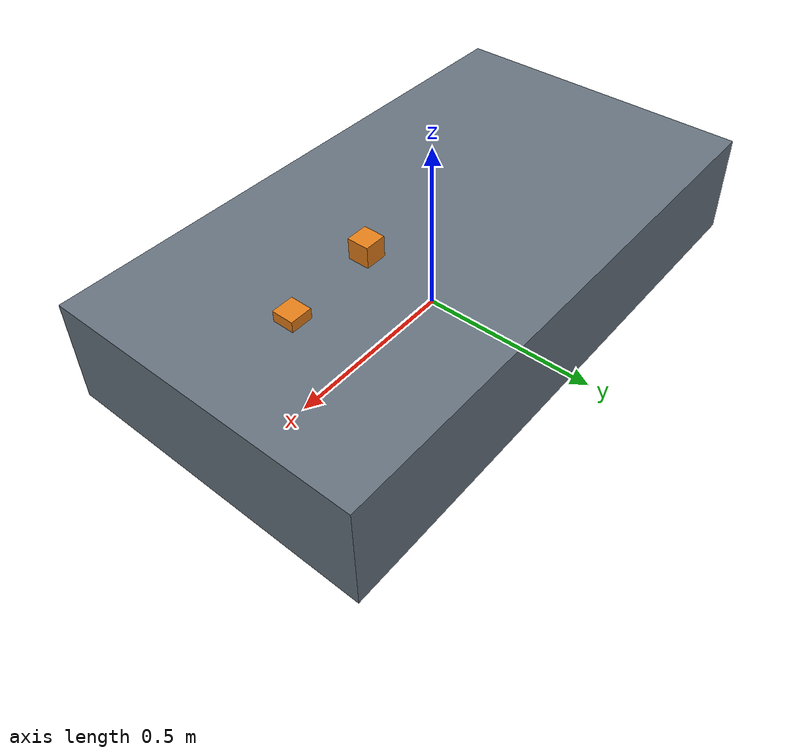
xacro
<?xml version="1.0"?>
<robot xmlns:xacro="http://www.ros.org/wiki/xacro" name="usv">

  <!-- ======================= 可覆盖参数（外参，单位 m / rad） ======================= -->
  <!-- base_link → livox_frame -->
  <xacro:property name="livox_xyz"  value="0.5 0.0 0.3"/>
  <xacro:property name="livox_rpy"  value="0.0 0.0 0.0"/>
  <!-- base_link → imu_link -->
  <xacro:property name="imu_xyz"    value="0.325 0.0 0.25"/>
  <xacro:property name="imu_rpy"    value="0.0 0.0 0.0"/>
  <!-- base_link → gps_link -->
  <xacro:property name="gps_xyz"    value="0.325 0.0 0.25"/>
  <xacro:property name="gps_rpy"    value="0.0 0.0 0.0"/>
  <!-- base_link → camera_link -->
  <xacro:property name="camera_xyz" value="0.25 0.0 0.35"/>
  <xacro:property name="camera_rpy" value="0.0 0.0 0.0"/>

  <!-- 船体外形（仅用于 RViz 可视化，可按实际尺寸修改；不影响 TF/导航） -->
  <xacro:property name="hull_length" value="1.6"/>
  <xacro:property name="hull_width"  value="0.9"/>
  <xacro:property name="hull_height" value="0.3"/>

  <material name="usv_hull_gray">
    <color rgba="0.4 0.45 0.5 1.0"/>
  </material>
  <material name="usv_sensor_orange">
    <color rgba="0.9 0.5 0.1 1.0"/>
  </material>

  <!-- ============================== 复用宏：传感器 link ============================== -->
  <!-- 生成一个传感器 link 及其相对 base_link 的 fixed joint -->
  <xacro:macro name="sensor_frame" params="name xyz rpy">
    <link name="${name}">
      <visual>
        <geometry>
          <box size="0.06 0.06 0.06"/>
        </geometry>
        <material name="usv_sensor_orange"/>
      </visual>
    </link>
    <joint name="base_link_to_${name}" type="fixed">
      <parent link="base_link"/>
      <child link="${name}"/>
      <origin xyz="${xyz}" rpy="${rpy}"/>
    </joint>
  </xacro:macro>

  <!-- ================================= base_link ================================= -->
  <link name="base_link">
    <visual>
      <origin xyz="0 0 ${hull_height/2}" rpy="0 0 0"/>
      <geometry>
        <box size="${hull_length} ${hull_width} ${hull_height}"/>
      </geometry>
      <material name="usv_hull_gray"/>
    </visual>
  </link>

  <!-- ================================ 传感器坐标系 ================================ -->
  <xacro:sensor_frame name="livox_frame" xyz="${livox_xyz}"  rpy="${livox_rpy}"/>
  <xacro:sensor_frame name="imu_link"    xyz="${imu_xyz}"    rpy="${imu_rpy}"/>
  <xacro:sensor_frame name="gps_link"    xyz="${gps_xyz}"    rpy="${gps_rpy}"/>
  <xacro:sensor_frame name="camera_link" xyz="${camera_xyz}" rpy="${camera_rpy}"/>

</robot>
